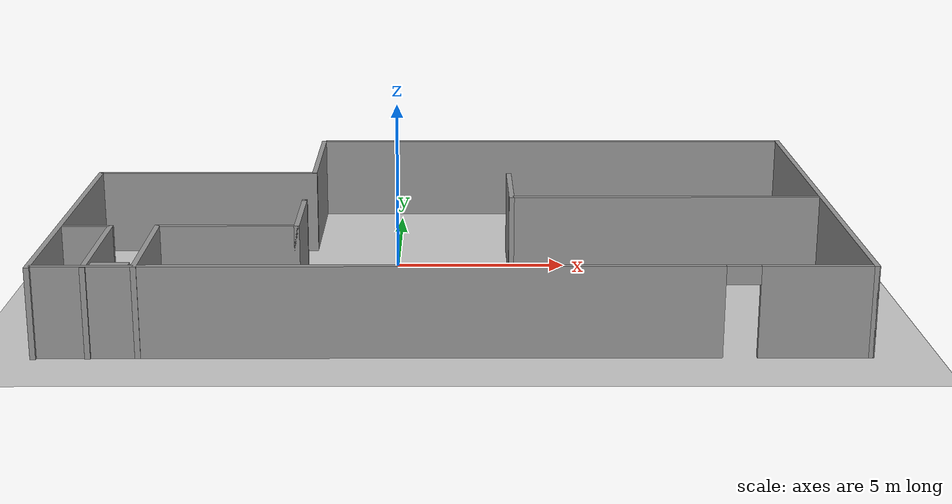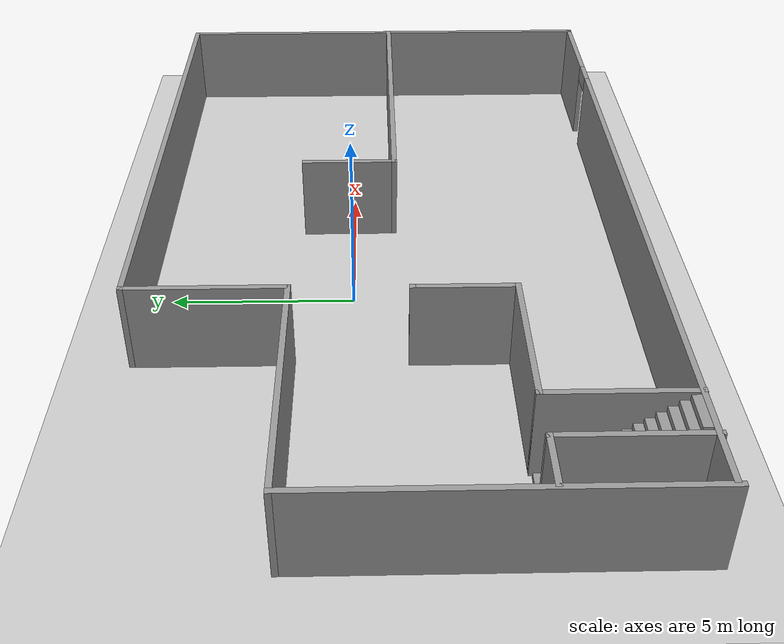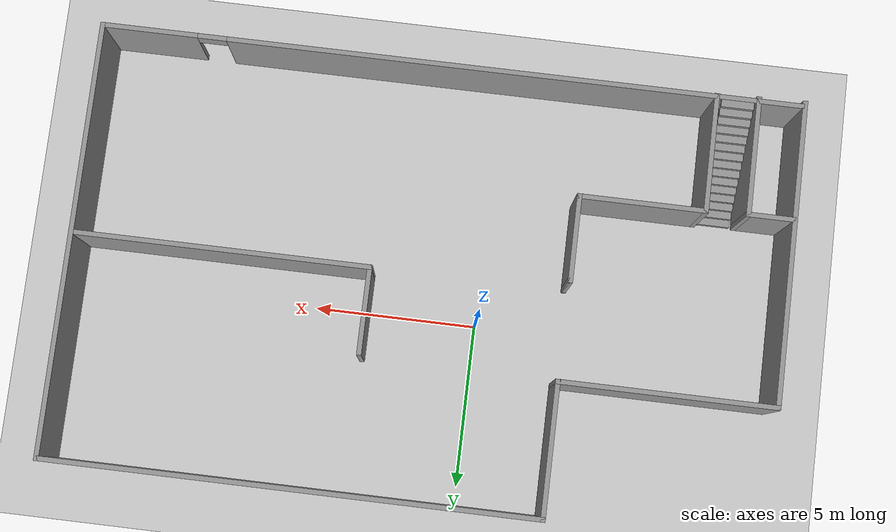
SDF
<sdf version="1.7">
 <world name="default">
  <light name="sun" type="directional">
   <pose>0 0 10 0 -0 0</pose>
   <diffuse>0.8 0.8 0.8 1</diffuse>
   <specular>0.2 0.2 0.2 1</specular>
   <attenuation>
    <range>1000</range>
    <constant>0.9</constant>
    <linear>0.01</linear>
    <quadratic>0.001</quadratic>
   </attenuation>
   <direction>-0.5 0.1 -0.9</direction>
   <spot><inner_angle>0</inner_angle><outer_angle>0</outer_angle><falloff>0</falloff></spot>
  </light>
  <model name="ground_plane">
   <static>1</static>
   <link name="link">
    <collision name="collision">
     <geometry><plane><normal>0 0 1</normal><size>100 100</size></plane></geometry>
     <surface><friction><ode><mu>100</mu><mu2>50</mu2></ode></friction></surface>
    </collision>
    <visual name="visual">
     <cast_shadows>0</cast_shadows>
     <geometry><plane><normal>0 0 1</normal><size>100 100</size></plane></geometry>
     <material>
      <script><uri>file://media/materials/scripts/gazebo.material</uri><name>Gazebo/Grey</name></script>
     </material>
    </visual>
   </link>
  </model>
  <gravity>0 0 -9.8</gravity>
  <magnetic_field>6e-06 2.3e-05 -4.2e-05</magnetic_field>
  <atmosphere type="adiabatic"/>
  <physics type="ode">
   <max_step_size>0.001</max_step_size>
   <real_time_factor>1</real_time_factor>
   <real_time_update_rate>1000</real_time_update_rate>
  </physics>
  <scene><ambient>0.4 0.4 0.4 1</ambient><background>0.7 0.7 0.7 1</background><shadows>1</shadows></scene>
  <spherical_coordinates>
   <surface_model>EARTH_WGS84</surface_model>
   <latitude_deg>0</latitude_deg>
   <longitude_deg>0</longitude_deg>
   <elevation>0</elevation>
   <heading_deg>0</heading_deg>
  </spherical_coordinates>
  <model name="test_world">
   <pose>1.6321 -1.05794 0 0 -0 0</pose>
   <link name="Stairs_0">
    <visual name="Stairs_0_Visual_0">
     <pose>-8.79663 -3.16844 0.083333 0 -0 0</pose>
     <geometry><box><size>1 0.233333 0.166667</size></box></geometry>
     <material>
      <script><uri>file://media/materials/scripts/gazebo.material</uri><name>Gazebo/Grey</name></script>
      <ambient>1 1 1 1</ambient>
     </material>
     <meta><layer>0</layer></meta>
    </visual>
    <collision name="Stairs_0_Collision_0">
     <geometry><box><size>1 0.233333 0.166667</size></box></geometry>
     <pose>-8.79663 -3.16844 0.083333 0 -0 0</pose>
    </collision>
    <visual name="Stairs_0_Visual_1">
     <pose>-8.79663 -3.40178 0.25 0 -0 0</pose>
     <geometry><box><size>1 0.233333 0.166667</size></box></geometry>
     <material>
      <script><uri>file://media/materials/scripts/gazebo.material</uri><name>Gazebo/Grey</name></script>
      <ambient>1 1 1 1</ambient>
     </material>
     <meta><layer>0</layer></meta>
    </visual>
    <collision name="Stairs_0_Collision_1">
     <geometry><box><size>1 0.233333 0.166667</size></box></geometry>
     <pose>-8.79663 -3.40178 0.25 0 -0 0</pose>
    </collision>
    <visual name="Stairs_0_Visual_2">
     <pose>-8.79663 -3.63511 0.416667 0 -0 0</pose>
     <geometry><box><size>1 0.233333 0.166667</size></box></geometry>
     <material>
      <script><uri>file://media/materials/scripts/gazebo.material</uri><name>Gazebo/Grey</name></script>
      <ambient>1 1 1 1</ambient>
     </material>
     <meta><layer>0</layer></meta>
    </visual>
    <collision name="Stairs_0_Collision_2">
     <geometry><box><size>1 0.233333 0.166667</size></box></geometry>
     <pose>-8.79663 -3.63511 0.416667 0 -0 0</pose>
    </collision>
    <visual name="Stairs_0_Visual_3">
     <pose>-8.79663 -3.86844 0.583333 0 -0 0</pose>
     <geometry><box><size>1 0.233333 0.166667</size></box></geometry>
     <material>
      <script><uri>file://media/materials/scripts/gazebo.material</uri><name>Gazebo/Grey</name></script>
      <ambient>1 1 1 1</ambient>
     </material>
     <meta><layer>0</layer></meta>
    </visual>
    <collision name="Stairs_0_Collision_3">
     <geometry><box><size>1 0.233333 0.166667</size></box></geometry>
     <pose>-8.79663 -3.86844 0.583333 0 -0 0</pose>
    </collision>
    <visual name="Stairs_0_Visual_4">
     <pose>-8.79663 -4.10177 0.75 0 -0 0</pose>
     <geometry><box><size>1 0.233333 0.166667</size></box></geometry>
     <material>
      <script><uri>file://media/materials/scripts/gazebo.material</uri><name>Gazebo/Grey</name></script>
      <ambient>1 1 1 1</ambient>
     </material>
     <meta><layer>0</layer></meta>
    </visual>
    <collision name="Stairs_0_Collision_4">
     <geometry><box><size>1 0.233333 0.166667</size></box></geometry>
     <pose>-8.79663 -4.10177 0.75 0 -0 0</pose>
    </collision>
    <visual name="Stairs_0_Visual_5">
     <pose>-8.79663 -4.33511 0.916667 0 -0 0</pose>
     <geometry><box><size>1 0.233333 0.166667</size></box></geometry>
     <material>
      <script><uri>file://media/materials/scripts/gazebo.material</uri><name>Gazebo/Grey</name></script>
      <ambient>1 1 1 1</ambient>
     </material>
     <meta><layer>0</layer></meta>
    </visual>
    <collision name="Stairs_0_Collision_5">
     <geometry><box><size>1 0.233333 0.166667</size></box></geometry>
     <pose>-8.79663 -4.33511 0.916667 0 -0 0</pose>
    </collision>
    <visual name="Stairs_0_Visual_6">
     <pose>-8.79663 -4.56844 1.08333 0 -0 0</pose>
     <geometry><box><size>1 0.233333 0.166667</size></box></geometry>
     <material>
      <script><uri>file://media/materials/scripts/gazebo.material</uri><name>Gazebo/Grey</name></script>
      <ambient>1 1 1 1</ambient>
     </material>
     <meta><layer>0</layer></meta>
    </visual>
    <collision name="Stairs_0_Collision_6">
     <geometry><box><size>1 0.233333 0.166667</size></box></geometry>
     <pose>-8.79663 -4.56844 1.08333 0 -0 0</pose>
    </collision>
    <visual name="Stairs_0_Visual_7">
     <pose>-8.79663 -4.80178 1.25 0 -0 0</pose>
     <geometry><box><size>1 0.233333 0.166667</size></box></geometry>
     <material>
      <script><uri>file://media/materials/scripts/gazebo.material</uri><name>Gazebo/Grey</name></script>
      <ambient>1 1 1 1</ambient>
     </material>
     <meta><layer>0</layer></meta>
    </visual>
    <collision name="Stairs_0_Collision_7">
     <geometry><box><size>1 0.233333 0.166667</size></box></geometry>
     <pose>-8.79663 -4.80178 1.25 0 -0 0</pose>
    </collision>
    <visual name="Stairs_0_Visual_8">
     <pose>-8.79663 -5.03511 1.41667 0 -0 0</pose>
     <geometry><box><size>1 0.233333 0.166667</size></box></geometry>
     <material>
      <script><uri>file://media/materials/scripts/gazebo.material</uri><name>Gazebo/Grey</name></script>
      <ambient>1 1 1 1</ambient>
     </material>
     <meta><layer>0</layer></meta>
    </visual>
    <collision name="Stairs_0_Collision_8">
     <geometry><box><size>1 0.233333 0.166667</size></box></geometry>
     <pose>-8.79663 -5.03511 1.41667 0 -0 0</pose>
    </collision>
    <visual name="Stairs_0_Visual_9">
     <pose>-8.79663 -5.26844 1.58333 0 -0 0</pose>
     <geometry><box><size>1 0.233333 0.166667</size></box></geometry>
     <material>
      <script><uri>file://media/materials/scripts/gazebo.material</uri><name>Gazebo/Grey</name></script>
      <ambient>1 1 1 1</ambient>
     </material>
     <meta><layer>0</layer></meta>
    </visual>
    <collision name="Stairs_0_Collision_9">
     <geometry><box><size>1 0.233333 0.166667</size></box></geometry>
     <pose>-8.79663 -5.26844 1.58333 0 -0 0</pose>
    </collision>
    <visual name="Stairs_0_Visual_10">
     <pose>-8.79663 -5.50178 1.75 0 -0 0</pose>
     <geometry><box><size>1 0.233333 0.166667</size></box></geometry>
     <material>
      <script><uri>file://media/materials/scripts/gazebo.material</uri><name>Gazebo/Grey</name></script>
      <ambient>1 1 1 1</ambient>
     </material>
     <meta><layer>0</layer></meta>
    </visual>
    <collision name="Stairs_0_Collision_10">
     <geometry><box><size>1 0.233333 0.166667</size></box></geometry>
     <pose>-8.79663 -5.50178 1.75 0 -0 0</pose>
    </collision>
    <visual name="Stairs_0_Visual_11">
     <pose>-8.79663 -5.73511 1.91667 0 -0 0</pose>
     <geometry><box><size>1 0.233333 0.166667</size></box></geometry>
     <material>
      <script><uri>file://media/materials/scripts/gazebo.material</uri><name>Gazebo/Grey</name></script>
      <ambient>1 1 1 1</ambient>
     </material>
     <meta><layer>0</layer></meta>
    </visual>
    <collision name="Stairs_0_Collision_11">
     <geometry><box><size>1 0.233333 0.166667</size></box></geometry>
     <pose>-8.79663 -5.73511 1.91667 0 -0 0</pose>
    </collision>
    <visual name="Stairs_0_Visual_12">
     <pose>-8.79663 -5.96844 2.08333 0 -0 0</pose>
     <geometry><box><size>1 0.233333 0.166667</size></box></geometry>
     <material>
      <script><uri>file://media/materials/scripts/gazebo.material</uri><name>Gazebo/Grey</name></script>
      <ambient>1 1 1 1</ambient>
     </material>
     <meta><layer>0</layer></meta>
    </visual>
    <collision name="Stairs_0_Collision_12">
     <geometry><box><size>1 0.233333 0.166667</size></box></geometry>
     <pose>-8.79663 -5.96844 2.08333 0 -0 0</pose>
    </collision>
    <visual name="Stairs_0_Visual_13">
     <pose>-8.79663 -6.20177 2.25 0 -0 0</pose>
     <geometry><box><size>1 0.233333 0.166667</size></box></geometry>
     <material>
      <script><uri>file://media/materials/scripts/gazebo.material</uri><name>Gazebo/Grey</name></script>
      <ambient>1 1 1 1</ambient>
     </material>
     <meta><layer>0</layer></meta>
    </visual>
    <collision name="Stairs_0_Collision_13">
     <geometry><box><size>1 0.233333 0.166667</size></box></geometry>
     <pose>-8.79663 -6.20177 2.25 0 -0 0</pose>
    </collision>
    <visual name="Stairs_0_Visual_14">
     <pose>-8.79663 -6.43511 2.41667 0 -0 0</pose>
     <geometry><box><size>1 0.233333 0.166667</size></box></geometry>
     <material>
      <script><uri>file://media/materials/scripts/gazebo.material</uri><name>Gazebo/Grey</name></script>
      <ambient>1 1 1 1</ambient>
     </material>
     <meta><layer>0</layer></meta>
    </visual>
    <collision name="Stairs_0_Collision_14">
     <geometry><box><size>1 0.233333 0.166667</size></box></geometry>
     <pose>-8.79663 -6.43511 2.41667 0 -0 0</pose>
    </collision>
   </link>
   <link name="Wall_0">
    <pose>0.05 -6.625 0 0 -0 0</pose>
    <visual name="Wall_0_Visual_0">
     <pose>-1.96281 0 1.25 0 -0 0</pose>
     <geometry><box><size>17.8244 0.15 2.5</size></box></geometry>
     <material>
      <script><uri>file://media/materials/scripts/gazebo.material</uri><name>Gazebo/Grey</name></script>
      <ambient>1 1 1 1</ambient>
     </material>
     <meta><layer>0</layer></meta>
    </visual>
    <collision name="Wall_0_Collision_0">
     <geometry><box><size>17.8244 0.15 2.5</size></box></geometry>
     <pose>-1.96281 0 1.25 0 -0 0</pose>
    </collision>
    <visual name="Wall_0_Visual_1">
     <pose>9.36219 0 1.25 0 -0 0</pose>
     <geometry><box><size>3.02561 0.15 2.5</size></box></geometry>
     <material>
      <script><uri>file://media/materials/scripts/gazebo.material</uri><name>Gazebo/Grey</name></script>
      <ambient>1 1 1 1</ambient>
     </material>
     <meta><layer>0</layer></meta>
    </visual>
    <collision name="Wall_0_Collision_1">
     <geometry><box><size>3.02561 0.15 2.5</size></box></geometry>
     <pose>9.36219 0 1.25 0 -0 0</pose>
    </collision>
    <visual name="Wall_0_Visual_2">
     <pose>7.39939 0 2.25 0 -0 0</pose>
     <geometry><box><size>0.9 0.15 0.5</size></box></geometry>
     <material>
      <script><uri>file://media/materials/scripts/gazebo.material</uri><name>Gazebo/Grey</name></script>
      <ambient>1 1 1 1</ambient>
     </material>
     <meta><layer>0</layer></meta>
    </visual>
    <collision name="Wall_0_Collision_2">
     <geometry><box><size>0.9 0.15 0.5</size></box></geometry>
     <pose>7.39939 0 2.25 0 -0 0</pose>
    </collision>
   </link>
   <link name="Wall_1">
    <collision name="Wall_1_Collision">
     <geometry><box><size>13.5 0.15 2.5</size></box></geometry>
     <pose>0 0 1.25 0 -0 0</pose>
    </collision>
    <visual name="Wall_1_Visual">
     <pose>0 0 1.25 0 -0 0</pose>
     <geometry><box><size>13.5 0.15 2.5</size></box></geometry>
     <material>
      <script><uri>file://media/materials/scripts/gazebo.material</uri><name>Gazebo/Grey</name></script>
      <ambient>1 1 1 1</ambient>
     </material>
     <meta><layer>0</layer></meta>
    </visual>
    <pose>10.85 0.049999 0 0 -0 1.5708</pose>
   </link>
   <link name="Wall_12">
    <collision name="Wall_12_Collision">
     <geometry><box><size>3.75 0.15 2.5</size></box></geometry>
     <pose>0 0 1.25 0 -0 0</pose>
    </collision>
    <visual name="Wall_12_Visual">
     <pose>0 0 1.25 0 -0 0</pose>
     <geometry><box><size>3.75 0.15 2.5</size></box></geometry>
     <material>
      <script><uri>file://media/materials/scripts/gazebo.material</uri><name>Gazebo/Grey</name></script>
      <ambient>1 1 1 1</ambient>
     </material>
     <meta><layer>0</layer></meta>
    </visual>
    <pose>-8.14954 -4.84133 0 0 -0 1.5708</pose>
   </link>
   <link name="Wall_13">
    <collision name="Wall_13_Collision">
     <geometry><box><size>4 0.15 2.5</size></box></geometry>
     <pose>0 0 1.25 0 -0 0</pose>
    </collision>
    <visual name="Wall_13_Visual">
     <pose>0 0 1.25 0 -0 0</pose>
     <geometry><box><size>4 0.15 2.5</size></box></geometry>
     <material>
      <script><uri>file://media/materials/scripts/gazebo.material</uri><name>Gazebo/Grey</name></script>
      <ambient>1 1 1 1</ambient>
     </material>
     <meta><layer>0</layer></meta>
    </visual>
    <pose>-6.22454 -3.04133 0 0 -0 0</pose>
   </link>
   <link name="Wall_14">
    <collision name="Wall_14_Collision">
     <geometry><box><size>2.75 0.15 2.5</size></box></geometry>
     <pose>0 0 1.25 0 -0 0</pose>
    </collision>
    <visual name="Wall_14_Visual">
     <pose>0 0 1.25 0 -0 0</pose>
     <geometry><box><size>2.75 0.15 2.5</size></box></geometry>
     <material>
      <script><uri>file://media/materials/scripts/gazebo.material</uri><name>Gazebo/Grey</name></script>
      <ambient>1 1 1 1</ambient>
     </material>
     <meta><layer>0</layer></meta>
    </visual>
    <pose>-4.29953 -1.74133 0 0 -0 1.5708</pose>
   </link>
   <link name="Wall_15">
    <collision name="Wall_15_Collision">
     <geometry><box><size>0.15 0.15 2.5</size></box></geometry>
     <pose>0 0 1.25 0 -0 0</pose>
    </collision>
    <visual name="Wall_15_Visual">
     <pose>0 0 1.25 0 -0 0</pose>
     <geometry><box><size>0.15 0.15 2.5</size></box></geometry>
     <material>
      <script><uri>file://media/materials/scripts/gazebo.material</uri><name>Gazebo/Grey</name></script>
      <ambient>1 1 1 1</ambient>
     </material>
     <meta><layer>0</layer></meta>
    </visual>
    <pose>-4.29953 -0.44133 0 0 -0 0</pose>
   </link>
   <link name="Wall_17">
    <collision name="Wall_17_Collision">
     <geometry><box><size>9.25 0.15 2.5</size></box></geometry>
     <pose>0 0 1.25 0 -0 0</pose>
    </collision>
    <visual name="Wall_17_Visual">
     <pose>0 0 1.25 0 -0 0</pose>
     <geometry><box><size>9.25 0.15 2.5</size></box></geometry>
     <material>
      <script><uri>file://media/materials/scripts/gazebo.material</uri><name>Gazebo/Grey</name></script>
      <ambient>1 1 1 1</ambient>
     </material>
     <meta><layer>0</layer></meta>
    </visual>
    <pose>6.29775 -0.121862 0 0 -0 3.14159</pose>
   </link>
   <link name="Wall_18">
    <collision name="Wall_18_Collision">
     <geometry><box><size>2.75 0.15 2.5</size></box></geometry>
     <pose>0 0 1.25 0 -0 0</pose>
    </collision>
    <visual name="Wall_18_Visual">
     <pose>0 0 1.25 0 -0 0</pose>
     <geometry><box><size>2.75 0.15 2.5</size></box></geometry>
     <material>
      <script><uri>file://media/materials/scripts/gazebo.material</uri><name>Gazebo/Grey</name></script>
      <ambient>1 1 1 1</ambient>
     </material>
     <meta><layer>0</layer></meta>
    </visual>
    <pose>1.74775 1.17814 0 0 -0 1.5708</pose>
   </link>
   <link name="Wall_2">
    <collision name="Wall_2_Collision">
     <geometry><box><size>15.25 0.15 2.5</size></box></geometry>
     <pose>0 0 1.25 0 -0 0</pose>
    </collision>
    <visual name="Wall_2_Visual">
     <pose>0 0 1.25 0 -0 0</pose>
     <geometry><box><size>15.25 0.15 2.5</size></box></geometry>
     <material>
      <script><uri>file://media/materials/scripts/gazebo.material</uri><name>Gazebo/Grey</name></script>
      <ambient>1 1 1 1</ambient>
     </material>
     <meta><layer>0</layer></meta>
    </visual>
    <pose>3.3 6.725 0 0 -0 3.14159</pose>
   </link>
   <link name="Wall_3">
    <collision name="Wall_3_Collision">
     <geometry><box><size>4.25 0.15 2.5</size></box></geometry>
     <pose>0 0 1.25 0 -0 0</pose>
    </collision>
    <visual name="Wall_3_Visual">
     <pose>0 0 1.25 0 -0 0</pose>
     <geometry><box><size>4.25 0.15 2.5</size></box></geometry>
     <material>
      <script><uri>file://media/materials/scripts/gazebo.material</uri><name>Gazebo/Grey</name></script>
      <ambient>1 1 1 1</ambient>
     </material>
     <meta><layer>0</layer></meta>
    </visual>
    <pose>-4.25 4.675 0 0 -0 -1.5708</pose>
   </link>
   <link name="Wall_4">
    <collision name="Wall_4_Collision">
     <geometry><box><size>6.75 0.15 2.5</size></box></geometry>
     <pose>0 0 1.25 0 -0 0</pose>
    </collision>
    <visual name="Wall_4_Visual">
     <pose>0 0 1.25 0 -0 0</pose>
     <geometry><box><size>6.75 0.15 2.5</size></box></geometry>
     <material>
      <script><uri>file://media/materials/scripts/gazebo.material</uri><name>Gazebo/Grey</name></script>
      <ambient>1 1 1 1</ambient>
     </material>
     <meta><layer>0</layer></meta>
    </visual>
    <pose>-7.55 2.625 0 0 -0 3.14159</pose>
   </link>
   <link name="Wall_5">
    <collision name="Wall_5_Collision">
     <geometry><box><size>9.5 0.15 2.5</size></box></geometry>
     <pose>0 0 1.25 0 -0 0</pose>
    </collision>
    <visual name="Wall_5_Visual">
     <pose>0 0 1.25 0 -0 0</pose>
     <geometry><box><size>9.5 0.15 2.5</size></box></geometry>
     <material>
      <script><uri>file://media/materials/scripts/gazebo.material</uri><name>Gazebo/Grey</name></script>
      <ambient>1 1 1 1</ambient>
     </material>
     <meta><layer>0</layer></meta>
    </visual>
    <pose>-10.85 -2.05 0 0 -0 -1.5708</pose>
   </link>
   <link name="Wall_7">
    <collision name="Wall_7_Collision">
     <geometry><box><size>1.5 0.15 2.5</size></box></geometry>
     <pose>0 0 1.25 0 -0 0</pose>
    </collision>
    <visual name="Wall_7_Visual">
     <pose>0 0 1.25 0 -0 0</pose>
     <geometry><box><size>1.5 0.15 2.5</size></box></geometry>
     <material>
      <script><uri>file://media/materials/scripts/gazebo.material</uri><name>Gazebo/Grey</name></script>
      <ambient>1 1 1 1</ambient>
     </material>
     <meta><layer>0</layer></meta>
    </visual>
    <pose>-10.114 -3.08872 0 0 -0 3.14159</pose>
   </link>
   <link name="Wall_9">
    <collision name="Wall_9_Collision">
     <geometry><box><size>3.75 0.15 2.5</size></box></geometry>
     <pose>0 0 1.25 0 -0 0</pose>
    </collision>
    <visual name="Wall_9_Visual">
     <pose>0 0 1.25 0 -0 0</pose>
     <geometry><box><size>3.75 0.15 2.5</size></box></geometry>
     <material>
      <script><uri>file://media/materials/scripts/gazebo.material</uri><name>Gazebo/Grey</name></script>
      <ambient>1 1 1 1</ambient>
     </material>
     <meta><layer>0</layer></meta>
    </visual>
    <pose>-9.43903 -4.88872 0 0 -0 -1.5708</pose>
   </link>
   <static>1</static>
  </model>
 </world>
</sdf>
